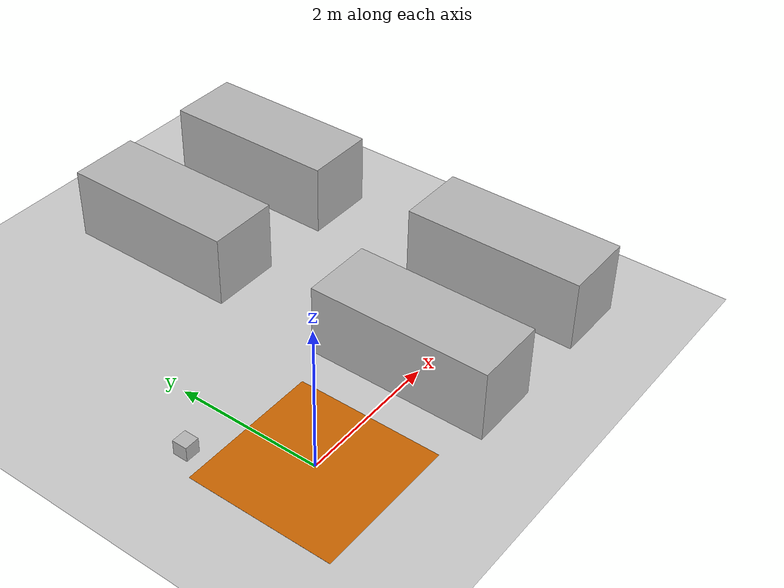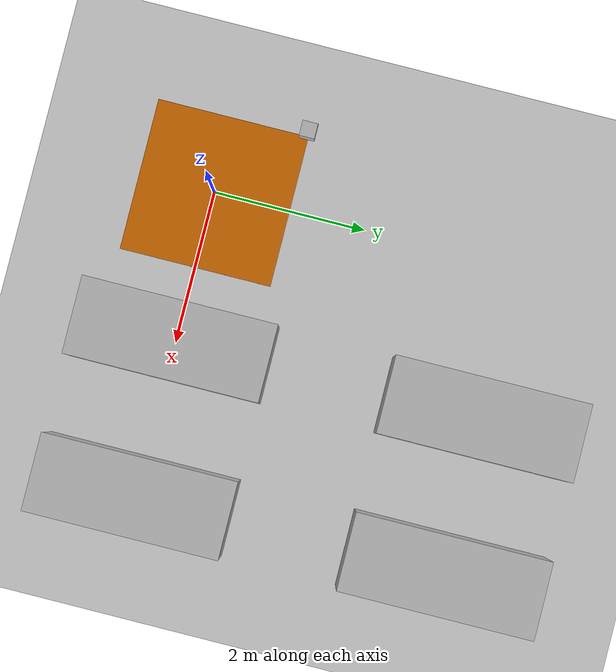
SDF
<?xml version="1.0" ?>
<sdf version="1.6">
  <world name="default">

    <!--SOURCE: https://automaticaddison.com/how-to-simulate-a-robotic-arm-in-gazebo-ros-2/-->

    <grid>false</grid>
    <!-- Plugin for simulating physics -->
    <plugin
      filename="gz-sim-physics-system"
      name="gz::sim::systems::Physics">
    </plugin>

    <!-- Plugin for handling user commands -->
    <plugin
      filename="gz-sim-user-commands-system"
      name="gz::sim::systems::UserCommands">
    </plugin>

    <!-- Plugin for broadcasting scene updates -->
    <plugin
      filename="gz-sim-scene-broadcaster-system"
      name="gz::sim::systems::SceneBroadcaster">
    </plugin>

    <plugin filename="gz-sim-contact-system"
        name="gz::sim::systems::Contact">
    </plugin>

    <plugin
      filename="gz-sim-sensors-system"
      name="gz::sim::systems::Sensors">
      <render_engine>ogre2</render_engine>
    </plugin>

    <gravity>0.0 0.0 -9.8</gravity>

    <include>
      <uri>
        https://fuel.gazebosim.org/1.0/OpenRobotics/models/Sun
      </uri>
    </include>

  <model name="ground_plane">
    <static>true</static>
    <include>
      <uri>https://fuel.gazebosim.org/1.0/OpenRobotics/models/Ground Plane</uri>
	<pose>0 0 0 0 0 0</pose>
    </include>
  </model>

    <model name="storage_platform">
      <pose>0 0 0.001 0 0 0</pose>
      <static>true</static>
        <link name="platform">
        <inertial>
          <mass>1.0</mass>
          <inertia>
            <ixx>0.083</ixx>
            <ixy>0.0</ixy>
            <ixz>0.0</ixz>
            <iyy>0.083</iyy>
            <iyz>0.0</iyz>
            <izz>0.083</izz>
          </inertia>
        </inertial>
        <collision name="collision">
          <geometry>
            <box>
              <size>0 0 0</size>
            </box>
          </geometry>
        </collision>
        <visual name="visual">
          <geometry>
            <box>
              <size>2 2 0.001</size>
            </box>
          </geometry>

          <material>
            <ambient>0.8 0.4 0.0 1</ambient>
            <diffuse>0.8 0.4 0.0 1</diffuse>
            <specular>0.2 0.1 0.0 1</specular>
            <emissive>0.0 0.0 0.0 1</emissive>
        </material>
        </visual>
      </link>
    </model>

    <model name="cube">

       <plugin
            filename="gz-sim-pose-publisher-system"
            name="gz::sim::systems::PosePublisher">
            <publish_link_pose>true</publish_link_pose>
            <publish_collision_pose>false</publish_collision_pose>
            <publish_visual_pose>false</publish_visual_pose>
            <publish_nested_model_pose>true</publish_nested_model_pose>
            <use_pose_vector_msg>true</use_pose_vector_msg>
        </plugin>

      <pose>-1 1 0.5 0 0 0</pose>
        <link name="link">
        <inertial>
          <mass>1.0</mass>
          <inertia> <!-- inertias are tricky to compute -->
            <!-- http://gazebosim.org/tutorials?tut=inertia&cat=build_robot -->
            <ixx>0.083</ixx>       <!-- for a box: ixx = 0.083 * mass * (y*y + z*z) -->
            <ixy>0.0</ixy>         <!-- for a box: ixy = 0 -->
            <ixz>0.0</ixz>         <!-- for a box: ixz = 0 -->
            <iyy>0.083</iyy>       <!-- for a box: iyy = 0.083 * mass * (x*x + z*z) -->
            <iyz>0.0</iyz>         <!-- for a box: iyz = 0 -->
            <izz>0.083</izz>       <!-- for a box: izz = 0.083 * mass * (x*x + y*y) -->
          </inertia>
        </inertial>
        <collision name="collision">
          <geometry>
            <box>
              <size>0.2 0.2 0.2</size>
            </box>
          </geometry>
        </collision>
        <visual name="visual">
          <geometry>
            <box>
              <size>0.2 0.2 0.2</size>
            </box>
          </geometry>
        </visual>
      </link>
    </model>

    <model name="container1">
        <static>false</static>
   <link name='chassis'>
            <pose>2 0 0.5 0 0 0</pose>
            <collision name='collision'>
              <geometry>
                <box>
                  <size>1 2.5 1</size>
                </box>
              </geometry>
            </collision>

            <visual name='visual'>
              <geometry>
                <box>
                  <size>1 2.5 1</size>
                </box>
              </geometry>
            </visual>
          </link>
  </model>

  <model name="container2">
    <static>false</static>
<link name='chassis'>
        <pose>4 0 0.5 0 0 0</pose>
        <collision name='collision'>
          <geometry>
            <box>
              <size>1 2.5 1</size>
            </box>
          </geometry>
        </collision>

        <visual name='visual'>
          <geometry>
            <box>
              <size>1 2.5 1</size>
            </box>
          </geometry>
        </visual>
      </link>
</model>

<model name="container3">
  <static>false</static>
<link name='chassis'>
      <pose>2 4 0.5 0 0 0</pose>
      <collision name='collision'>
        <geometry>
          <box>
            <size>1 2.5 1</size>
          </box>
        </geometry>
      </collision>

      <visual name='visual'>
        <geometry>
          <box>
            <size>1 2.5 1</size>
          </box>
        </geometry>
      </visual>
    </link>
</model>

<model name="container4">
  <static>false</static>
<link name='chassis'>
      <pose>4 4 0.5 0 0 0</pose>
      <collision name='collision'>
        <geometry>
          <box>
            <size>1 2.5 1</size>
          </box>
        </geometry>
      </collision>

      <visual name='visual'>
        <geometry>
          <box>
            <size>1 2.5 1</size>
          </box>
        </geometry>
      </visual>
    </link>
</model>

    <!-- Define scene properties -->
    <scene>
      <shadows>false</shadows>
      <grid>false</grid>
    </scene>

  </world>
</sdf>
